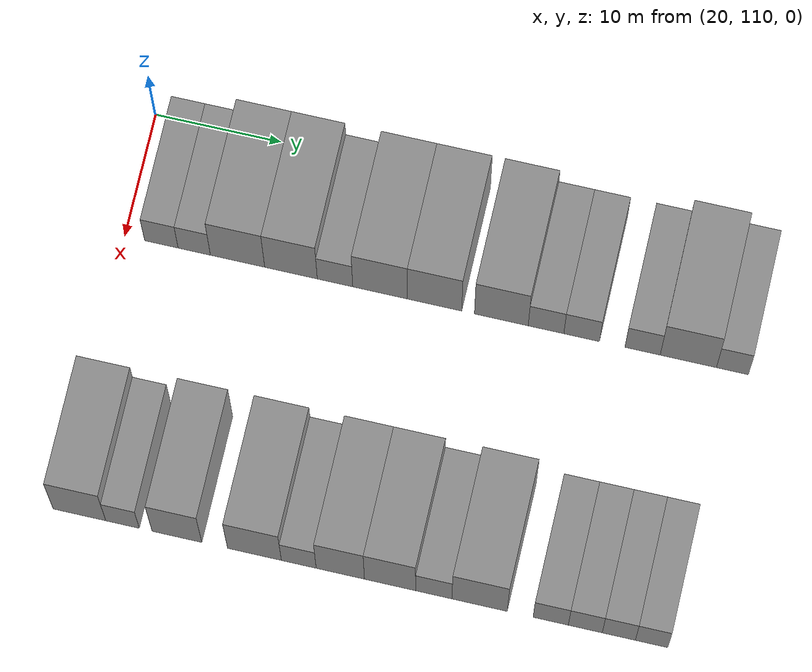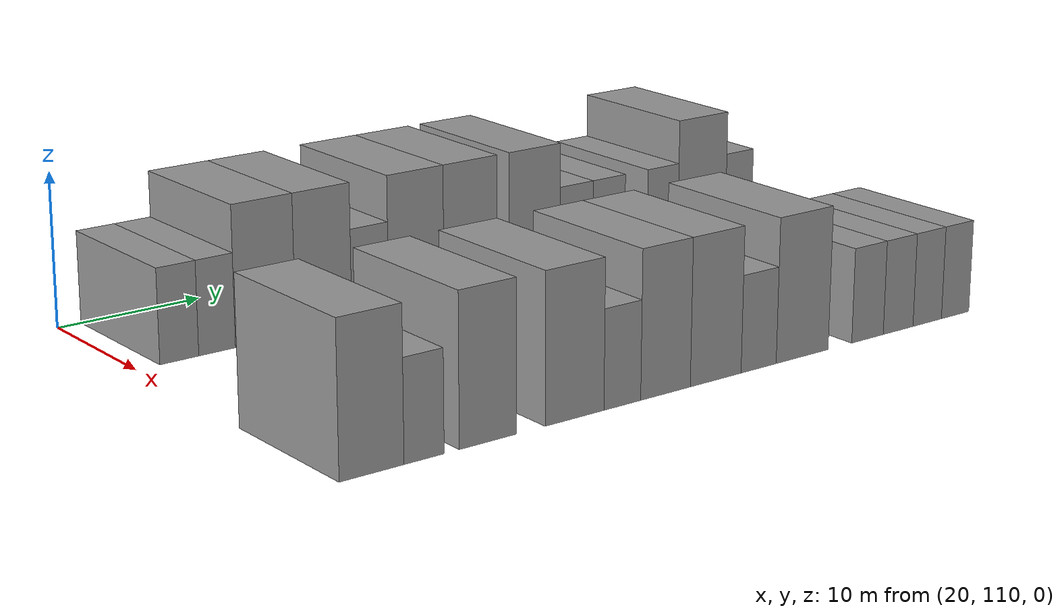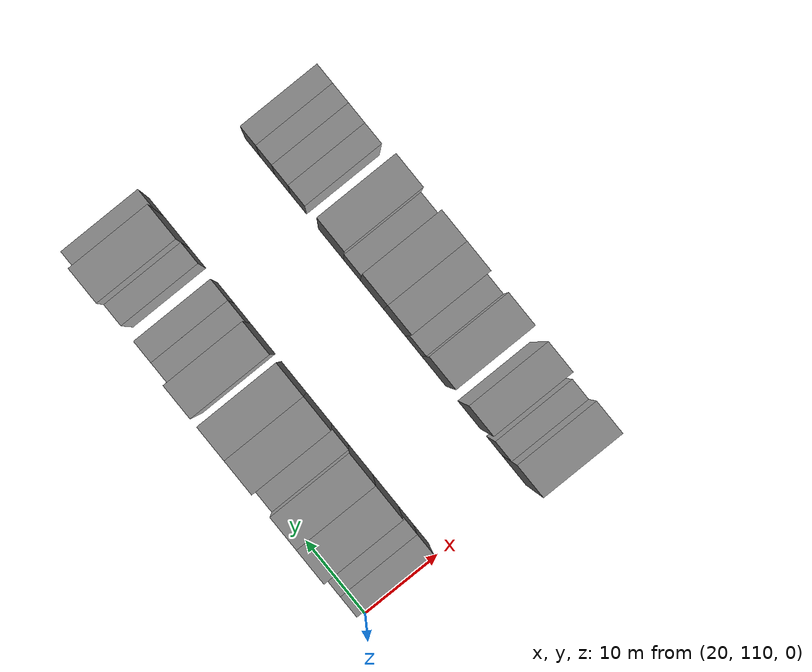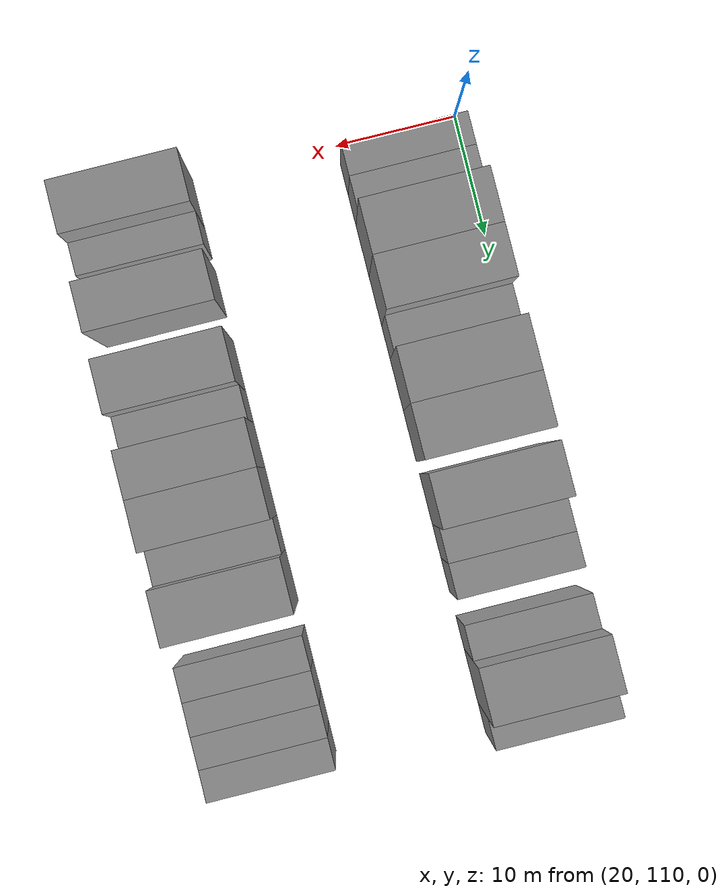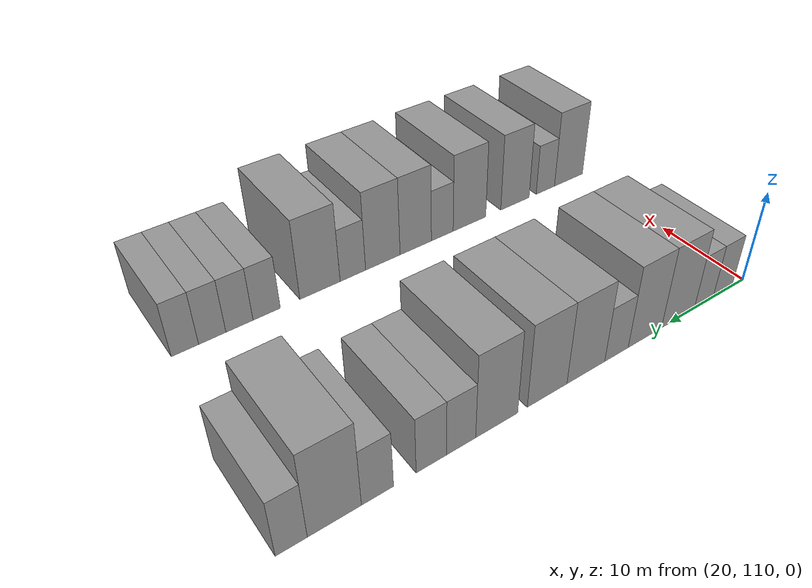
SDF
<sdf version="1.6">
 <world name="default">
  <model name="building_83">
   <static>1</static>
   <pose>25.0000 112.8915 0 0.000000 0.000000 0.000000</pose>
   <link name="link">
    <pose>0 0 3.00 0 0 0</pose>
    <collision name="collision"><geometry><box><size>10.0000 2.6458 6.0000</size></box></geometry></collision>
    <visual name="visual">
     <cast_shadows>0</cast_shadows>
     <geometry><box><size>10.0000 2.6458 6.0000</size></box></geometry>
     <material>
      <script>
       <uri>model://grey_wall/materials/scripts</uri>
       <uri>model://grey_wall/materials/textures</uri>
       <name>vrc/grey_wall</name>
      </script>
     </material>
    </visual>
   </link>
  </model>
  <model name="building_84">
   <static>1</static>
   <pose>25.0000 115.4899 0 0.000000 0.000000 0.000000</pose>
   <link name="link">
    <pose>0 0 3.00 0 0 0</pose>
    <collision name="collision"><geometry><box><size>10.0000 2.5511 6.0000</size></box></geometry></collision>
    <visual name="visual">
     <cast_shadows>0</cast_shadows>
     <geometry><box><size>10.0000 2.5511 6.0000</size></box></geometry>
     <material>
      <script>
       <uri>model://grey_wall/materials/scripts</uri>
       <uri>model://grey_wall/materials/textures</uri>
       <name>vrc/grey_wall</name>
      </script>
     </material>
    </visual>
   </link>
  </model>
  <model name="building_85">
   <static>1</static>
   <pose>25.0000 118.9108 0 0.000000 0.000000 0.000000</pose>
   <link name="link">
    <pose>0 0 4.50 0 0 0</pose>
    <collision name="collision"><geometry><box><size>10.0000 4.2908 9.0000</size></box></geometry></collision>
    <visual name="visual">
     <cast_shadows>0</cast_shadows>
     <geometry><box><size>10.0000 4.2908 9.0000</size></box></geometry>
     <material>
      <script>
       <uri>model://grey_wall/materials/scripts</uri>
       <uri>model://grey_wall/materials/textures</uri>
       <name>vrc/grey_wall</name>
      </script>
     </material>
    </visual>
   </link>
  </model>
  <model name="building_86">
   <static>1</static>
   <pose>25.0000 123.1293 0 0.000000 0.000000 0.000000</pose>
   <link name="link">
    <pose>0 0 4.50 0 0 0</pose>
    <collision name="collision"><geometry><box><size>10.0000 4.1462 9.0000</size></box></geometry></collision>
    <visual name="visual">
     <cast_shadows>0</cast_shadows>
     <geometry><box><size>10.0000 4.1462 9.0000</size></box></geometry>
     <material>
      <script>
       <uri>model://grey_wall/materials/scripts</uri>
       <uri>model://grey_wall/materials/textures</uri>
       <name>vrc/grey_wall</name>
      </script>
     </material>
    </visual>
   </link>
  </model>
  <model name="building_87">
   <static>1</static>
   <pose>25.0000 126.5987 0 0.000000 0.000000 0.000000</pose>
   <link name="link">
    <pose>0 0 3.00 0 0 0</pose>
    <collision name="collision"><geometry><box><size>10.0000 2.7926 6.0000</size></box></geometry></collision>
    <visual name="visual">
     <cast_shadows>0</cast_shadows>
     <geometry><box><size>10.0000 2.7926 6.0000</size></box></geometry>
     <material>
      <script>
       <uri>model://grey_wall/materials/scripts</uri>
       <uri>model://grey_wall/materials/textures</uri>
       <name>vrc/grey_wall</name>
      </script>
     </material>
    </visual>
   </link>
  </model>
  <model name="building_88">
   <static>1</static>
   <pose>25.0000 130.1476 0 0.000000 0.000000 0.000000</pose>
   <link name="link">
    <pose>0 0 4.50 0 0 0</pose>
    <collision name="collision"><geometry><box><size>10.0000 4.3051 9.0000</size></box></geometry></collision>
    <visual name="visual">
     <cast_shadows>0</cast_shadows>
     <geometry><box><size>10.0000 4.3051 9.0000</size></box></geometry>
     <material>
      <script>
       <uri>model://grey_wall/materials/scripts</uri>
       <uri>model://grey_wall/materials/textures</uri>
       <name>vrc/grey_wall</name>
      </script>
     </material>
    </visual>
   </link>
  </model>
  <model name="building_89">
   <static>1</static>
   <pose>25.0000 134.4338 0 0.000000 0.000000 0.000000</pose>
   <link name="link">
    <pose>0 0 4.50 0 0 0</pose>
    <collision name="collision"><geometry><box><size>10.0000 4.2674 9.0000</size></box></geometry></collision>
    <visual name="visual">
     <cast_shadows>0</cast_shadows>
     <geometry><box><size>10.0000 4.2674 9.0000</size></box></geometry>
     <material>
      <script>
       <uri>model://grey_wall/materials/scripts</uri>
       <uri>model://grey_wall/materials/textures</uri>
       <name>vrc/grey_wall</name>
      </script>
     </material>
    </visual>
   </link>
  </model>
  <model name="building_90">
   <static>1</static>
   <pose>25.0000 139.6768 0 0.000000 0.000000 0.000000</pose>
   <link name="link">
    <pose>0 0 4.50 0 0 0</pose>
    <collision name="collision"><geometry><box><size>10.0000 4.2186 9.0000</size></box></geometry></collision>
    <visual name="visual">
     <cast_shadows>0</cast_shadows>
     <geometry><box><size>10.0000 4.2186 9.0000</size></box></geometry>
     <material>
      <script>
       <uri>model://grey_wall/materials/scripts</uri>
       <uri>model://grey_wall/materials/textures</uri>
       <name>vrc/grey_wall</name>
      </script>
     </material>
    </visual>
   </link>
  </model>
  <model name="building_91">
   <static>1</static>
   <pose>25.0000 143.1825 0 0.000000 0.000000 0.000000</pose>
   <link name="link">
    <pose>0 0 3.00 0 0 0</pose>
    <collision name="collision"><geometry><box><size>10.0000 2.7928 6.0000</size></box></geometry></collision>
    <visual name="visual">
     <cast_shadows>0</cast_shadows>
     <geometry><box><size>10.0000 2.7928 6.0000</size></box></geometry>
     <material>
      <script>
       <uri>model://grey_wall/materials/scripts</uri>
       <uri>model://grey_wall/materials/textures</uri>
       <name>vrc/grey_wall</name>
      </script>
     </material>
    </visual>
   </link>
  </model>
  <model name="building_92">
   <static>1</static>
   <pose>25.0000 145.9728 0 0.000000 0.000000 0.000000</pose>
   <link name="link">
    <pose>0 0 3.00 0 0 0</pose>
    <collision name="collision"><geometry><box><size>10.0000 2.7876 6.0000</size></box></geometry></collision>
    <visual name="visual">
     <cast_shadows>0</cast_shadows>
     <geometry><box><size>10.0000 2.7876 6.0000</size></box></geometry>
     <material>
      <script>
       <uri>model://grey_wall/materials/scripts</uri>
       <uri>model://grey_wall/materials/textures</uri>
       <name>vrc/grey_wall</name>
      </script>
     </material>
    </visual>
   </link>
  </model>
  <model name="building_93">
   <static>1</static>
   <pose>25.0000 150.7443 0 0.000000 0.000000 0.000000</pose>
   <link name="link">
    <pose>0 0 3.00 0 0 0</pose>
    <collision name="collision"><geometry><box><size>10.0000 2.7555 6.0000</size></box></geometry></collision>
    <visual name="visual">
     <cast_shadows>0</cast_shadows>
     <geometry><box><size>10.0000 2.7555 6.0000</size></box></geometry>
     <material>
      <script>
       <uri>model://grey_wall/materials/scripts</uri>
       <uri>model://grey_wall/materials/textures</uri>
       <name>vrc/grey_wall</name>
      </script>
     </material>
    </visual>
   </link>
  </model>
  <model name="building_94">
   <static>1</static>
   <pose>25.0000 154.3201 0 0.000000 0.000000 0.000000</pose>
   <link name="link">
    <pose>0 0 4.50 0 0 0</pose>
    <collision name="collision"><geometry><box><size>10.0000 4.3960 9.0000</size></box></geometry></collision>
    <visual name="visual">
     <cast_shadows>0</cast_shadows>
     <geometry><box><size>10.0000 4.3960 9.0000</size></box></geometry>
     <material>
      <script>
       <uri>model://grey_wall/materials/scripts</uri>
       <uri>model://grey_wall/materials/textures</uri>
       <name>vrc/grey_wall</name>
      </script>
     </material>
    </visual>
   </link>
  </model>
  <model name="building_95">
   <static>1</static>
   <pose>25.0000 157.7613 0 0.000000 0.000000 0.000000</pose>
   <link name="link">
    <pose>0 0 3.00 0 0 0</pose>
    <collision name="collision"><geometry><box><size>10.0000 2.4864 6.0000</size></box></geometry></collision>
    <visual name="visual">
     <cast_shadows>0</cast_shadows>
     <geometry><box><size>10.0000 2.4864 6.0000</size></box></geometry>
     <material>
      <script>
       <uri>model://grey_wall/materials/scripts</uri>
       <uri>model://grey_wall/materials/textures</uri>
       <name>vrc/grey_wall</name>
      </script>
     </material>
    </visual>
   </link>
  </model>
  <model name="building_183">
   <static>1</static>
   <pose>47.0000 111.8722 0 0.000000 0.000000 0.000000</pose>
   <link name="link">
    <pose>0 0 4.50 0 0 0</pose>
    <collision name="collision"><geometry><box><size>10.0000 4.1070 9.0000</size></box></geometry></collision>
    <visual name="visual">
     <cast_shadows>0</cast_shadows>
     <geometry><box><size>10.0000 4.1070 9.0000</size></box></geometry>
     <material>
      <script>
       <uri>model://grey_wall/materials/scripts</uri>
       <uri>model://grey_wall/materials/textures</uri>
       <name>vrc/grey_wall</name>
      </script>
     </material>
    </visual>
   </link>
  </model>
  <model name="building_184">
   <static>1</static>
   <pose>47.0000 115.2304 0 0.000000 0.000000 0.000000</pose>
   <link name="link">
    <pose>0 0 3.00 0 0 0</pose>
    <collision name="collision"><geometry><box><size>10.0000 2.6095 6.0000</size></box></geometry></collision>
    <visual name="visual">
     <cast_shadows>0</cast_shadows>
     <geometry><box><size>10.0000 2.6095 6.0000</size></box></geometry>
     <material>
      <script>
       <uri>model://grey_wall/materials/scripts</uri>
       <uri>model://grey_wall/materials/textures</uri>
       <name>vrc/grey_wall</name>
      </script>
     </material>
    </visual>
   </link>
  </model>
  <model name="building_185">
   <static>1</static>
   <pose>47.0000 119.4689 0 0.000000 0.000000 0.000000</pose>
   <link name="link">
    <pose>0 0 4.50 0 0 0</pose>
    <collision name="collision"><geometry><box><size>10.0000 3.8676 9.0000</size></box></geometry></collision>
    <visual name="visual">
     <cast_shadows>0</cast_shadows>
     <geometry><box><size>10.0000 3.8676 9.0000</size></box></geometry>
     <material>
      <script>
       <uri>model://grey_wall/materials/scripts</uri>
       <uri>model://grey_wall/materials/textures</uri>
       <name>vrc/grey_wall</name>
      </script>
     </material>
    </visual>
   </link>
  </model>
  <model name="building_186">
   <static>1</static>
   <pose>47.0000 125.4946 0 0.000000 0.000000 0.000000</pose>
   <link name="link">
    <pose>0 0 4.50 0 0 0</pose>
    <collision name="collision"><geometry><box><size>10.0000 4.1836 9.0000</size></box></geometry></collision>
    <visual name="visual">
     <cast_shadows>0</cast_shadows>
     <geometry><box><size>10.0000 4.1836 9.0000</size></box></geometry>
     <material>
      <script>
       <uri>model://grey_wall/materials/scripts</uri>
       <uri>model://grey_wall/materials/textures</uri>
       <name>vrc/grey_wall</name>
      </script>
     </material>
    </visual>
   </link>
  </model>
  <model name="building_187">
   <static>1</static>
   <pose>47.0000 128.9352 0 0.000000 0.000000 0.000000</pose>
   <link name="link">
    <pose>0 0 3.00 0 0 0</pose>
    <collision name="collision"><geometry><box><size>10.0000 2.6977 6.0000</size></box></geometry></collision>
    <visual name="visual">
     <cast_shadows>0</cast_shadows>
     <geometry><box><size>10.0000 2.6977 6.0000</size></box></geometry>
     <material>
      <script>
       <uri>model://grey_wall/materials/scripts</uri>
       <uri>model://grey_wall/materials/textures</uri>
       <name>vrc/grey_wall</name>
      </script>
     </material>
    </visual>
   </link>
  </model>
  <model name="building_188">
   <static>1</static>
   <pose>47.0000 132.1552 0 0.000000 0.000000 0.000000</pose>
   <link name="link">
    <pose>0 0 4.50 0 0 0</pose>
    <collision name="collision"><geometry><box><size>10.0000 3.7423 9.0000</size></box></geometry></collision>
    <visual name="visual">
     <cast_shadows>0</cast_shadows>
     <geometry><box><size>10.0000 3.7423 9.0000</size></box></geometry>
     <material>
      <script>
       <uri>model://grey_wall/materials/scripts</uri>
       <uri>model://grey_wall/materials/textures</uri>
       <name>vrc/grey_wall</name>
      </script>
     </material>
    </visual>
   </link>
  </model>
  <model name="building_189">
   <static>1</static>
   <pose>47.0000 136.0038 0 0.000000 0.000000 0.000000</pose>
   <link name="link">
    <pose>0 0 4.50 0 0 0</pose>
    <collision name="collision"><geometry><box><size>10.0000 3.9549 9.0000</size></box></geometry></collision>
    <visual name="visual">
     <cast_shadows>0</cast_shadows>
     <geometry><box><size>10.0000 3.9549 9.0000</size></box></geometry>
     <material>
      <script>
       <uri>model://grey_wall/materials/scripts</uri>
       <uri>model://grey_wall/materials/textures</uri>
       <name>vrc/grey_wall</name>
      </script>
     </material>
    </visual>
   </link>
  </model>
  <model name="building_190">
   <static>1</static>
   <pose>47.0000 139.3868 0 0.000000 0.000000 0.000000</pose>
   <link name="link">
    <pose>0 0 3.00 0 0 0</pose>
    <collision name="collision"><geometry><box><size>10.0000 2.8111 6.0000</size></box></geometry></collision>
    <visual name="visual">
     <cast_shadows>0</cast_shadows>
     <geometry><box><size>10.0000 2.8111 6.0000</size></box></geometry>
     <material>
      <script>
       <uri>model://grey_wall/materials/scripts</uri>
       <uri>model://grey_wall/materials/textures</uri>
       <name>vrc/grey_wall</name>
      </script>
     </material>
    </visual>
   </link>
  </model>
  <model name="building_191">
   <static>1</static>
   <pose>47.0000 142.9312 0 0.000000 0.000000 0.000000</pose>
   <link name="link">
    <pose>0 0 4.50 0 0 0</pose>
    <collision name="collision"><geometry><box><size>10.0000 4.2776 9.0000</size></box></geometry></collision>
    <visual name="visual">
     <cast_shadows>0</cast_shadows>
     <geometry><box><size>10.0000 4.2776 9.0000</size></box></geometry>
     <material>
      <script>
       <uri>model://grey_wall/materials/scripts</uri>
       <uri>model://grey_wall/materials/textures</uri>
       <name>vrc/grey_wall</name>
      </script>
     </material>
    </visual>
   </link>
  </model>
  <model name="building_192">
   <static>1</static>
   <pose>47.0000 148.4260 0 0.000000 0.000000 0.000000</pose>
   <link name="link">
    <pose>0 0 3.00 0 0 0</pose>
    <collision name="collision"><geometry><box><size>10.0000 2.7120 6.0000</size></box></geometry></collision>
    <visual name="visual">
     <cast_shadows>0</cast_shadows>
     <geometry><box><size>10.0000 2.7120 6.0000</size></box></geometry>
     <material>
      <script>
       <uri>model://grey_wall/materials/scripts</uri>
       <uri>model://grey_wall/materials/textures</uri>
       <name>vrc/grey_wall</name>
      </script>
     </material>
    </visual>
   </link>
  </model>
  <model name="building_193">
   <static>1</static>
   <pose>47.0000 151.0899 0 0.000000 0.000000 0.000000</pose>
   <link name="link">
    <pose>0 0 3.00 0 0 0</pose>
    <collision name="collision"><geometry><box><size>10.0000 2.6159 6.0000</size></box></geometry></collision>
    <visual name="visual">
     <cast_shadows>0</cast_shadows>
     <geometry><box><size>10.0000 2.6159 6.0000</size></box></geometry>
     <material>
      <script>
       <uri>model://grey_wall/materials/scripts</uri>
       <uri>model://grey_wall/materials/textures</uri>
       <name>vrc/grey_wall</name>
      </script>
     </material>
    </visual>
   </link>
  </model>
  <model name="building_194">
   <static>1</static>
   <pose>47.0000 153.6716 0 0.000000 0.000000 0.000000</pose>
   <link name="link">
    <pose>0 0 3.00 0 0 0</pose>
    <collision name="collision"><geometry><box><size>10.0000 2.5474 6.0000</size></box></geometry></collision>
    <visual name="visual">
     <cast_shadows>0</cast_shadows>
     <geometry><box><size>10.0000 2.5474 6.0000</size></box></geometry>
     <material>
      <script>
       <uri>model://grey_wall/materials/scripts</uri>
       <uri>model://grey_wall/materials/textures</uri>
       <name>vrc/grey_wall</name>
      </script>
     </material>
    </visual>
   </link>
  </model>
  <model name="building_195">
   <static>1</static>
   <pose>47.0000 156.1915 0 0.000000 0.000000 0.000000</pose>
   <link name="link">
    <pose>0 0 3.00 0 0 0</pose>
    <collision name="collision"><geometry><box><size>10.0000 2.4924 6.0000</size></box></geometry></collision>
    <visual name="visual">
     <cast_shadows>0</cast_shadows>
     <geometry><box><size>10.0000 2.4924 6.0000</size></box></geometry>
     <material>
      <script>
       <uri>model://grey_wall/materials/scripts</uri>
       <uri>model://grey_wall/materials/textures</uri>
       <name>vrc/grey_wall</name>
      </script>
     </material>
    </visual>
   </link>
  </model>
 </world>
</sdf>
